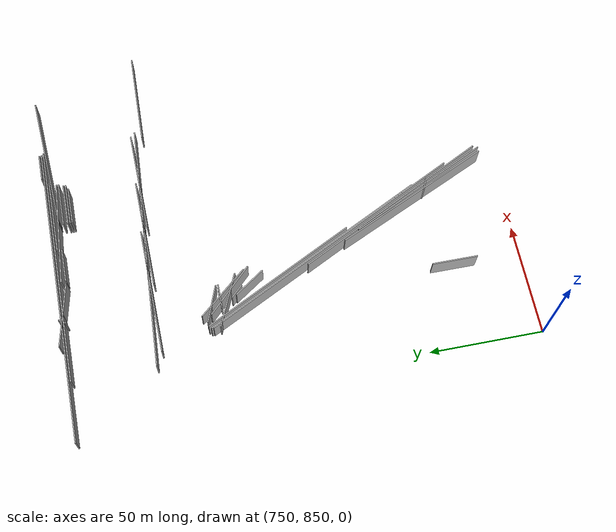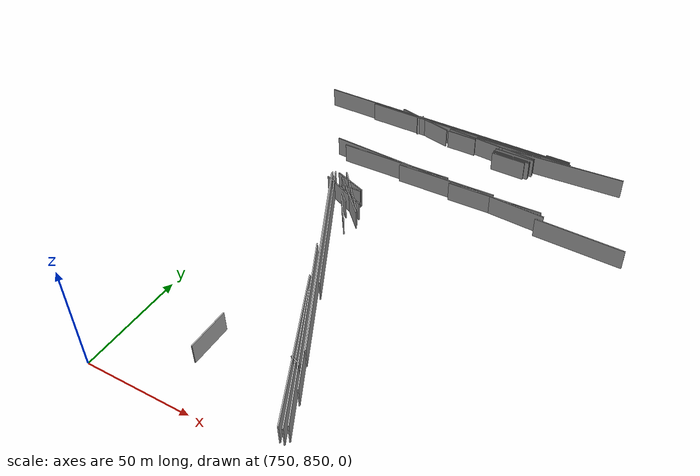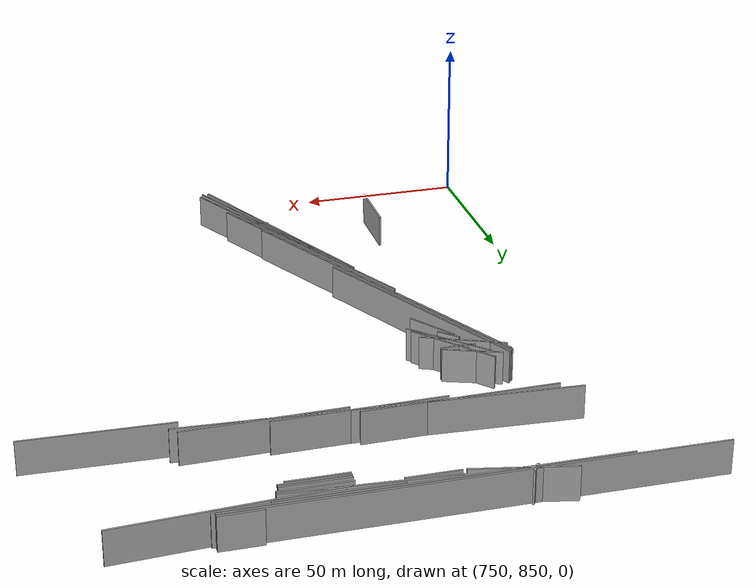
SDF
<sdf version="1.6">
 <model name="Worldsegments">
  <static>1</static>
  <link name="Wall_10">
   <pose>819.0 1012.0 5.0 0 0 -0.05352027</pose>
   <collision name="Wall_10_Collision"><geometry><box><size>112.1606 0.5 10.0</size></box></geometry></collision>
   <visual name="Wall_10_Visual"><geometry><box><size>112.1606 0.5 10.0</size></box></geometry></visual>
  </link>
  <link name="Wall_77">
   <pose>793.0 1051.0 5.0 0 0 -0.21109334</pose>
   <collision name="Wall_77_Collision">
    <geometry><box><size>28.635643 0.5 10.0</size></box></geometry>
   </collision>
   <visual name="Wall_77_Visual"><geometry><box><size>28.635643 0.5 10.0</size></box></geometry></visual>
  </link>
  <link name="Wall_82">
   <pose>804.0 931.5 5.0 0 0 -1.1036766</pose>
   <collision name="Wall_82_Collision"><geometry><box><size>128.7983 0.5 10.0</size></box></geometry></collision>
   <visual name="Wall_82_Visual"><geometry><box><size>128.7983 0.5 10.0</size></box></geometry></visual>
  </link>
  <link name="Wall_102">
   <pose>817.5 901.5 5.0 0 0 -1.102454</pose>
   <collision name="Wall_102_Collision">
    <geometry><box><size>95.257545 0.5 10.0</size></box></geometry>
   </collision>
   <visual name="Wall_102_Visual"><geometry><box><size>95.257545 0.5 10.0</size></box></geometry></visual>
  </link>
  <link name="Wall_107">
   <pose>817.5 1051.0 5.0 0 0 0.0</pose>
   <collision name="Wall_107_Collision"><geometry><box><size>109.0 0.5 10.0</size></box></geometry></collision>
   <visual name="Wall_107_Visual"><geometry><box><size>109.0 0.5 10.0</size></box></geometry></visual>
  </link>
  <link name="Wall_109">
   <pose>804.0 1052.0 5.0 0 0 0.0</pose>
   <collision name="Wall_109_Collision"><geometry><box><size>134.0 0.5 10.0</size></box></geometry></collision>
   <visual name="Wall_109_Visual"><geometry><box><size>134.0 0.5 10.0</size></box></geometry></visual>
  </link>
  <link name="Wall_156">
   <pose>893.0 1005.5 5.0 0 0 -0.023805026</pose>
   <collision name="Wall_156_Collision"><geometry><box><size>42.0119 0.5 10.0</size></box></geometry></collision>
   <visual name="Wall_156_Visual"><geometry><box><size>42.0119 0.5 10.0</size></box></geometry></visual>
  </link>
  <link name="Wall_166">
   <pose>845.0 1046.0 5.0 0 0 0.0</pose>
   <collision name="Wall_166_Collision"><geometry><box><size>20.0 0.5 10.0</size></box></geometry></collision>
   <visual name="Wall_166_Visual"><geometry><box><size>20.0 0.5 10.0</size></box></geometry></visual>
  </link>
  <link name="Wall_195">
   <pose>790.0 1051.5 5.0 0 0 0.98279375</pose>
   <collision name="Wall_195_Collision">
    <geometry><box><size>3.6055512 0.5 10.0</size></box></geometry>
   </collision>
   <visual name="Wall_195_Visual"><geometry><box><size>3.6055512 0.5 10.0</size></box></geometry></visual>
  </link>
  <link name="Wall_240">
   <pose>800.0 940.5 5.0 0 0 -1.1031165</pose>
   <collision name="Wall_240_Collision">
    <geometry><box><size>110.909874 0.5 10.0</size></box></geometry>
   </collision>
   <visual name="Wall_240_Visual"><geometry><box><size>110.909874 0.5 10.0</size></box></geometry></visual>
  </link>
  <link name="Wall_248">
   <pose>815.5 1048.0 5.0 0 0 0.0</pose>
   <collision name="Wall_248_Collision"><geometry><box><size>15.0 0.5 10.0</size></box></geometry></collision>
   <visual name="Wall_248_Visual"><geometry><box><size>15.0 0.5 10.0</size></box></geometry></visual>
  </link>
  <link name="Wall_260">
   <pose>824.5 1011.5 5.0 0 0 0.02040533</pose>
   <collision name="Wall_260_Collision">
    <geometry><box><size>49.010204 0.5 10.0</size></box></geometry>
   </collision>
   <visual name="Wall_260_Visual"><geometry><box><size>49.010204 0.5 10.0</size></box></geometry></visual>
  </link>
  <link name="Wall_269">
   <pose>840.0 1050.0 5.0 0 0 0.0</pose>
   <collision name="Wall_269_Collision"><geometry><box><size>34.0 0.5 10.0</size></box></geometry></collision>
   <visual name="Wall_269_Visual"><geometry><box><size>34.0 0.5 10.0</size></box></geometry></visual>
  </link>
  <link name="Wall_272">
   <pose>786.5 981.0 5.0 0 0 -0.41012734</pose>
   <collision name="Wall_272_Collision">
    <geometry><box><size>25.079872 0.5 10.0</size></box></geometry>
   </collision>
   <visual name="Wall_272_Visual"><geometry><box><size>25.079872 0.5 10.0</size></box></geometry></visual>
  </link>
  <link name="Wall_280">
   <pose>793.0 957.5 5.0 0 0 -1.1011964</pose>
   <collision name="Wall_280_Collision">
    <geometry><box><size>75.13322 0.5 10.0</size></box></geometry>
   </collision>
   <visual name="Wall_280_Visual"><geometry><box><size>75.13322 0.5 10.0</size></box></geometry></visual>
  </link>
  <link name="Wall_337">
   <pose>850.0 1010.5 5.0 0 0 0.021735707</pose>
   <collision name="Wall_337_Collision">
    <geometry><box><size>46.010868 0.5 10.0</size></box></geometry>
   </collision>
   <visual name="Wall_337_Visual"><geometry><box><size>46.010868 0.5 10.0</size></box></geometry></visual>
  </link>
  <link name="Wall_340">
   <pose>820.0 891.5 5.0 0 0 -1.136552</pose>
   <collision name="Wall_340_Collision">
    <geometry><box><size>76.05919 0.5 10.0</size></box></geometry>
   </collision>
   <visual name="Wall_340_Visual"><geometry><box><size>76.05919 0.5 10.0</size></box></geometry></visual>
  </link>
  <link name="Wall_368">
   <pose>790.5 979.5 5.0 0 0 -0.7853982</pose>
   <collision name="Wall_368_Collision">
    <geometry><box><size>26.870058 0.5 10.0</size></box></geometry>
   </collision>
   <visual name="Wall_368_Visual"><geometry><box><size>26.870058 0.5 10.0</size></box></geometry></visual>
  </link>
  <link name="Wall_370">
   <pose>844.5 1044.0 5.0 0 0 0.0</pose>
   <collision name="Wall_370_Collision"><geometry><box><size>19.0 0.5 10.0</size></box></geometry></collision>
   <visual name="Wall_370_Visual"><geometry><box><size>19.0 0.5 10.0</size></box></geometry></visual>
  </link>
  <link name="Wall_377">
   <pose>797.0 1012.5 5.0 0 0 0.017855246</pose>
   <collision name="Wall_377_Collision">
    <geometry><box><size>56.008926 0.5 10.0</size></box></geometry>
   </collision>
   <visual name="Wall_377_Visual"><geometry><box><size>56.008926 0.5 10.0</size></box></geometry></visual>
  </link>
  <link name="Wall_427">
   <pose>831.5 1048.5 5.0 0 0 -0.063743316</pose>
   <collision name="Wall_427_Collision">
    <geometry><box><size>47.095646 0.5 10.0</size></box></geometry>
   </collision>
   <visual name="Wall_427_Visual"><geometry><box><size>47.095646 0.5 10.0</size></box></geometry></visual>
  </link>
  <link name="Wall_438">
   <pose>844.5 1043.0 5.0 0 0 0.0</pose>
   <collision name="Wall_438_Collision"><geometry><box><size>19.0 0.5 10.0</size></box></geometry></collision>
   <visual name="Wall_438_Visual"><geometry><box><size>19.0 0.5 10.0</size></box></geometry></visual>
  </link>
  <link name="Wall_439">
   <pose>843.5 1042.0 5.0 0 0 0.0</pose>
   <collision name="Wall_439_Collision"><geometry><box><size>17.0 0.5 10.0</size></box></geometry></collision>
   <visual name="Wall_439_Visual"><geometry><box><size>17.0 0.5 10.0</size></box></geometry></visual>
  </link>
  <link name="Wall_464">
   <pose>789.0 984.0 5.0 0 0 0.0</pose>
   <collision name="Wall_464_Collision"><geometry><box><size>10.0 0.5 10.0</size></box></geometry></collision>
   <visual name="Wall_464_Visual"><geometry><box><size>10.0 0.5 10.0</size></box></geometry></visual>
  </link>
  <link name="Wall_497">
   <pose>790.0 982.5 5.0 0 0 -0.86217004</pose>
   <collision name="Wall_497_Collision">
    <geometry><box><size>27.658634 0.5 10.0</size></box></geometry>
   </collision>
   <visual name="Wall_497_Visual"><geometry><box><size>27.658634 0.5 10.0</size></box></geometry></visual>
  </link>
  <link name="Wall_531">
   <pose>792.5 970.5 5.0 0 0 -0.9652517</pose>
   <collision name="Wall_531_Collision">
    <geometry><box><size>15.811388 0.5 10.0</size></box></geometry>
   </collision>
   <visual name="Wall_531_Visual"><geometry><box><size>15.811388 0.5 10.0</size></box></geometry></visual>
  </link>
  <link name="Wall_550">
   <pose>789.5 976.5 5.0 0 0 -0.7853982</pose>
   <collision name="Wall_550_Collision">
    <geometry><box><size>7.071068 0.5 10.0</size></box></geometry>
   </collision>
   <visual name="Wall_550_Visual"><geometry><box><size>7.071068 0.5 10.0</size></box></geometry></visual>
  </link>
  <link name="Wall_551">
   <pose>824.5 885.0 5.0 0 0 -0.38050637</pose>
   <collision name="Wall_551_Collision">
    <geometry><box><size>5.3851647 0.5 10.0</size></box></geometry>
   </collision>
   <visual name="Wall_551_Visual"><geometry><box><size>5.3851647 0.5 10.0</size></box></geometry></visual>
  </link>
  <link name="Wall_556">
   <pose>865.0 1053.0 5.0 0 0 0.0</pose>
   <collision name="Wall_556_Collision"><geometry><box><size>12.0 0.5 10.0</size></box></geometry></collision>
   <visual name="Wall_556_Visual"><geometry><box><size>12.0 0.5 10.0</size></box></geometry></visual>
  </link>
  <link name="Wall_561">
   <pose>867.0 1050.0 5.0 0 0 0.06442684</pose>
   <collision name="Wall_561_Collision"><geometry><box><size>62.1289 0.5 10.0</size></box></geometry></collision>
   <visual name="Wall_561_Visual"><geometry><box><size>62.1289 0.5 10.0</size></box></geometry></visual>
  </link>
  <link name="Wall_577">
   <pose>786.0 881.0 5.0 0 0 -1.5707964</pose>
   <collision name="Wall_577_Collision"><geometry><box><size>20.0 0.5 10.0</size></box></geometry></collision>
   <visual name="Wall_577_Visual"><geometry><box><size>20.0 0.5 10.0</size></box></geometry></visual>
  </link>
  <link name="Wall_630">
   <pose>823.0 888.0 5.0 0 0 -1.120135</pose>
   <collision name="Wall_630_Collision"><geometry><box><size>68.8767 0.5 10.0</size></box></geometry></collision>
   <visual name="Wall_630_Visual"><geometry><box><size>68.8767 0.5 10.0</size></box></geometry></visual>
  </link>
  <link name="Wall_652">
   <pose>786.0 988.0 5.0 0 0 -0.35877067</pose>
   <collision name="Wall_652_Collision">
    <geometry><box><size>17.088007 0.5 10.0</size></box></geometry>
   </collision>
   <visual name="Wall_652_Visual"><geometry><box><size>17.088007 0.5 10.0</size></box></geometry></visual>
  </link>
 </model>
</sdf>
